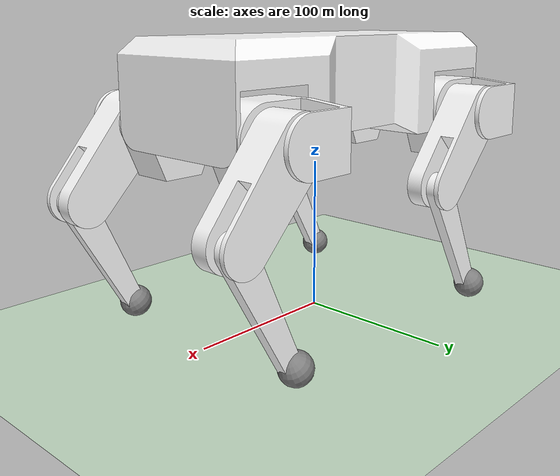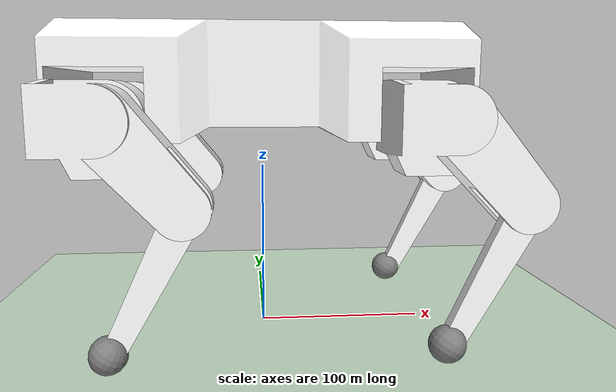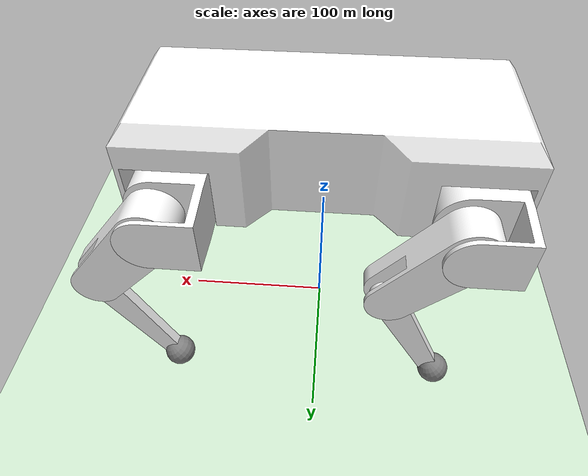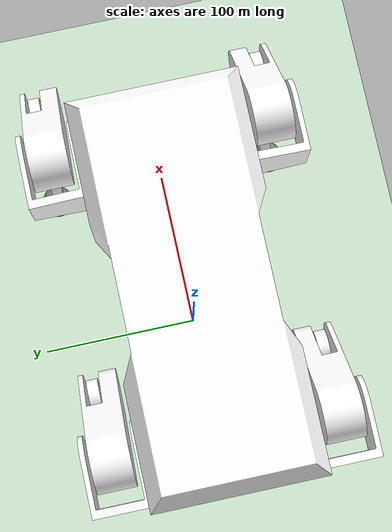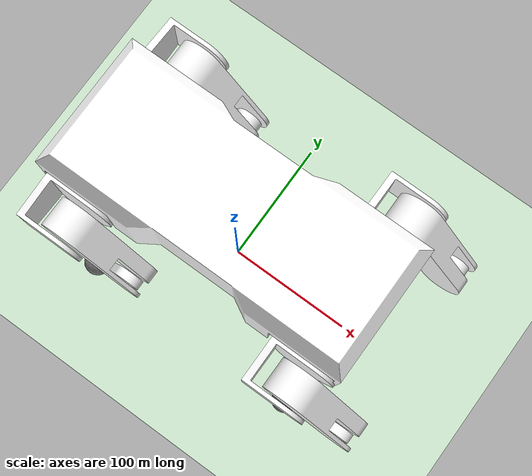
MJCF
<mujoco model="gnoci">
    <option timestep="0.005" gravity="0 0 -9810"/>
    <compiler angle="radian" meshdir="meshes" eulerseq="zyx" autolimits="true"/>

    <default>
        <joint
            limited="true"
            damping="0.01"
            armature="0.01"
            frictionloss="0.01"
        />
        <position
            kp="250000"
            dampratio="0.5"
            forcelimited="true"
            forcerange="-5000000 5000000"
        />
        <motor
            ctrlrange="-1 1"
            gear="1000000"
        />
        <default class="visualgeom">
            <geom
                material="visualgeom"
                condim="1"
                contype="0"
                conaffinity="0"
            />
        </default>

        <default class="body">
            <geom
                material="body"
                condim="1"
                friction=".7"
                solimp=".9 .99 .003"
                solref=".015 1"
            />
        </default>
    </default>

    <asset>
        <mesh name="body-main" content_type="model/stl" file="body-main-quad.stl" />
        <mesh name="hip-left" content_type="model/stl" file="hip-left.stl" />
        <mesh name="hip-right" content_type="model/stl" file="hip-right.stl" />
        <mesh name="thigh-left" content_type="model/stl" file="thigh-left.stl" />
        <mesh name="thigh-right" content_type="model/stl" file="thigh-right.stl" />
        <mesh name="lower-leg-left" content_type="model/stl" file="lower-leg-left.stl" />
        <mesh name="lower-leg-right" content_type="model/stl" file="lower-leg-right.stl"/>
        <texture builtin="checker" height="100" name="texplane" rgb1="0 0 0" rgb2="0.8 0.8 0.8" type="2d" width="100"/>
        <material name="MatPlane" reflectance="0.5" shininess="1" specular="1" texrepeat="60 60" texture="texplane"/>
        <material
            name="visualgeom"
            rgba="1 1 1 1"
        />
        <material
            name="body"
            rgba="0.5 0.9 0.2 0"
        />
    </asset>

    <worldbody>
        <light
            directional="true"
            diffuse="0.4 0.4 0.4"
            specular="0.1 0.1 0.1"
            pos="0 0 15.0"
            dir="0 0 -1"
            castshadow="false"
        />
        <geom condim="3" friction="1 .1 .1" material="MatPlane" name="floor" pos="0 0 0" rgba="0.8 0.9 0.8 1" size="1000 1000 0.125" type="plane"/>
        <camera
            name="track"
            mode="trackcom"
            pos="-250. -250. 375."
            xyaxes="0.7071 -0.7071 0 0.4082 0.4082 0.8165"
        />
        <body name="root" pos="0 0 157" quat="1 0 0 0">
            <freejoint name="root" />
            <site name="imu" size="0.01" pos="0 0 0" />
            <geom name="root" class="visualgeom" type="mesh" mesh="body-main" pos="0 0 0" quat="1 0 0 0"/>
            <geom class="body" type="box" size="115 50 15" pos="0 0 10"/>
            <geom class="body" type="box" size="50 50 17" pos="0 0 -23"/>
            <inertial mass="0.195" diaginertia="1000 1000 1000" pos="0 0 0"/>

            <body name="hip-front-left" pos="-89.5 -25 -30" quat="1 0 0 0">
                <geom class="visualgeom" type="mesh" mesh="hip-left" pos="0 0 0" quat="1 0 0 0"/>
                <geom class="body" type="cylinder" size="22 32" pos="0 -26 0" quat="1 1 0 0"/>
                <inertial mass='0.047' diaginertia="1000 1000 1000" pos="0 0 0"/>
                <joint name="hip-front-left-joint" pos="0 -10 0" axis="1 0 0" range="-0.38 0.42"/>

                <body name="thigh-front-left" pos="7 -30 5" quat="1 0 -0.38 0">
                    <geom class="visualgeom" type="mesh" mesh="thigh-left" pos="0 0 0" quat="1 0 0 0"/>
                    <inertial mass='0.041' diaginertia="1000 1000 1000" pos="0 0 0"/>
                    <joint name="thigh-front-left-joint" pos="0 0 0" axis="0 -1 0" range="-0.65 1"/>

                    <body name="lower-leg-front-left" pos="0 -12 -62" quat="1 0 0.75 0">
                        <geom class="visualgeom" type="mesh" mesh="lower-leg-left" pos="0 0 0" quat="1 0 0 0"/>
                        <geom class="body" type="capsule" size="10" fromto="0 0 0 5 -5 -85" pos="0 0 0" quat="1 0 0 0"/>
                        <inertial mass='0.01' diaginertia="1000 1000 1000" pos="0 0 0"/>
                        <joint name="lower-leg-front-left-joint" pos="0 0 0" axis="0 -1 0" range="-1.15 0.3"/>
                        <site name="foot-front-left" size="10.2" pos="5 -5 -85" />
                    </body>
                </body>
            </body>

            <body name="hip-front-right" pos="-89.5 25 -30" quat="1 0 0 0">
                <geom class="visualgeom" type="mesh" mesh="hip-right" pos="0 0 0" quat="1 0 0 0"/>
                <geom class="body" type="cylinder" size="22 32" pos="0 26 0" quat="1 1 0 0"/>
                <inertial mass='0.047' diaginertia="1000 1000 1000" pos="0 0 0"/>
                <joint name="hip-front-right-joint" pos="0 10 0" axis="1 0 0" range="-0.42 0.38"/>

                <body name="thigh-front-right" pos="7 30 5" quat="1 0 -0.38 0">
                    <geom class="visualgeom" type="mesh" mesh="thigh-right" pos="0 0 0" quat="1 0 0 0"/>
                    <inertial mass='0.041' diaginertia="1000 1000 1000" pos="0 0 0"/>
                    <joint name="thigh-front-right-joint" pos="0 0 0" axis="0 1 0" range="-1 0.65"/>

                    <body name="lower-leg-front-right" pos="0 12 -62" quat="1 0 0.75 0">
                        <geom class="visualgeom" type="mesh" mesh="lower-leg-right" pos="0 0 0" quat="1 0 0 0"/>
                        <geom class="body" type="capsule" size="10" fromto="0 0 0 5 5 -85" pos="0 0 0" quat="1 0 0 0"/>
                        <inertial mass='0.01' diaginertia="1000 1000 1000" pos="0 0 0"/>
                        <joint name="lower-leg-front-right-joint" pos="0 0 0" axis="0 1 0" range="-0.3 1.15"/>
                        <site name="foot-front-right" size="10.2" pos="5 5 -85" />
                    </body>
                </body>
            </body>

            <body name="hip-back-left" pos="89.5 -25 -30" quat="1 0 0 0">
                <geom class="visualgeom" type="mesh" mesh="hip-left" pos="0 0 0" quat="1 0 0 0"/>
                <geom class="body" type="cylinder" size="22 32" pos="0 -26 0" quat="1 1 0 0"/>
                <inertial mass='0.047' diaginertia="1000 1000 1000" pos="0 0 0"/>
                <joint name="hip-back-left-joint" pos="0 -10 0" axis="1 0 0" range="-0.38 0.42"/>

                <body name="thigh-back-left" pos="7 -30 5" quat="1 0 -0.38 0">
                    <geom class="visualgeom" type="mesh" mesh="thigh-left" pos="0 0 0" quat="1 0 0 0"/>
                    <inertial mass='0.041' diaginertia="1000 1000 1000" pos="0 0 0"/>
                    <joint name="thigh-back-left-joint" pos="0 0 0" axis="0 -1 0" range="-0.65 1"/>

                    <body name="lower-leg-back-left" pos="0 -12 -62" quat="1 0 0.75 0">
                        <geom class="visualgeom" type="mesh" mesh="lower-leg-left" pos="0 0 0" quat="1 0 0 0"/>
                        <geom class="body" type="capsule" size="10" fromto="0 0 0 5 -5 -85" pos="0 0 0" quat="1 0 0 0"/>
                        <inertial mass='0.01' diaginertia="1000 1000 1000" pos="0 0 0"/>
                        <joint name="lower-leg-back-left-joint" pos="0 0 0" axis="0 -1 0" range="-1.15 0.3"/>
                        <site name="foot-back-left" size="10.2" pos="5 -5 -85" />
                    </body>
                </body>
            </body>

            <body name="hip-back-right" pos="89.5 25 -30" quat="1 0 0 0">
                <geom class="visualgeom" type="mesh" mesh="hip-right" pos="0 0 0" quat="1 0 0 0"/>
                <geom class="body" type="cylinder" size="22 32" pos="0 26 0" quat="1 1 0 0"/>
                <inertial mass='0.047' diaginertia="1000 1000 1000" pos="0 0 0"/>
                <joint name="hip-back-right-joint" pos="0 10 0" axis="1 0 0" range="-0.42 0.38"/>

                <body name="thigh-back-right" pos="7 30 5" quat="1 0 -0.38 0">
                    <geom class="visualgeom" type="mesh" mesh="thigh-right" pos="0 0 0" quat="1 0 0 0"/>
                    <inertial mass='0.041' diaginertia="1000 1000 1000" pos="0 0 0"/>
                    <joint name="thigh-back-right-joint" pos="0 0 0" axis="0 1 0" range="-1 0.65"/>

                    <body name="lower-leg-back-right" pos="0 12 -62" quat="1 0 0.75 0">
                        <geom class="visualgeom" type="mesh" mesh="lower-leg-right" pos="0 0 0" quat="1 0 0 0"/>
                        <geom class="body" type="capsule" size="10" fromto="0 0 0 5 5 -85" pos="0 0 0" quat="1 0 0 0"/>
                        <inertial mass='0.01' diaginertia="1000 1000 1000" pos="0 0 0"/>
                        <joint name="lower-leg-back-right-joint" pos="0 0 0" axis="0 1 0" range="-0.3 1.15"/>
                        <site name="foot-back-right" size="10.2" pos="5 5 -85" />
                    </body>
                </body>
            </body>
        </body>

    </worldbody>

    <actuator>
        <motor name="servo-hip-front-left" joint="hip-front-left-joint"/>
        <motor name="servo-hip-front-right" joint="hip-front-right-joint"/>
        <motor name="servo-hip-back-left" joint="hip-back-left-joint"/>
        <motor name="servo-hip-back-right" joint="hip-back-right-joint"/>
        <motor name="servo-thigh-front-left" joint="thigh-front-left-joint"/>
        <motor name="servo-thigh-front-right" joint="thigh-front-right-joint"/>
        <motor name="servo-thigh-back-left" joint="thigh-back-left-joint"/>
        <motor name="servo-thigh-back-right" joint="thigh-back-right-joint"/>
        <motor name="servo-lower-leg-front-left" joint="lower-leg-front-left-joint"/>
        <motor name="servo-lower-leg-front-right" joint="lower-leg-front-right-joint"/>
        <motor name="servo-lower-leg-back-left" joint="lower-leg-back-left-joint"/>
        <motor name="servo-lower-leg-back-right" joint="lower-leg-back-right-joint"/>
    </actuator>

    <sensor>
        <actuatorpos name="hip-front-left-servo-pos" actuator="servo-hip-front-left" />
        <actuatorvel name="hip-front-left-servo-vel" actuator="servo-hip-front-left" />
        <actuatorpos name="hip-front-right-servo-pos" actuator="servo-hip-front-right" />
        <actuatorvel name="hip-front-right-servo-vel" actuator="servo-hip-front-right" />
        <actuatorpos name="hip-back-left-servo-pos" actuator="servo-hip-back-left" />
        <actuatorvel name="hip-back-left-servo-vel" actuator="servo-hip-back-left" />
        <actuatorpos name="hip-back-right-servo-pos" actuator="servo-hip-back-right" />
        <actuatorvel name="hip-back-right-servo-vel" actuator="servo-hip-back-right" />
        <actuatorpos name="thigh-front-left-servo-pos" actuator="servo-thigh-front-left" />
        <actuatorvel name="thigh-front-left-servo-vel" actuator="servo-thigh-front-left" />
        <actuatorpos name="thigh-front-right-servo-pos" actuator="servo-thigh-front-right" />
        <actuatorvel name="thigh-front-right-servo-vel" actuator="servo-thigh-front-right" />
        <actuatorpos name="thigh-back-left-servo-pos" actuator="servo-thigh-back-left" />
        <actuatorvel name="thigh-back-left-servo-vel" actuator="servo-thigh-back-left" />
        <actuatorpos name="thigh-back-right-servo-pos" actuator="servo-thigh-back-right" />
        <actuatorvel name="thigh-back-right-servo-vel" actuator="servo-thigh-back-right" />
        <actuatorpos name="lower-leg-front-left-servo-pos" actuator="servo-lower-leg-front-left" />
        <actuatorvel name="lower-leg-front-left-servo-vel" actuator="servo-lower-leg-front-left" />
        <actuatorpos name="lower-leg-front-right-servo-pos" actuator="servo-lower-leg-front-right" />
        <actuatorvel name="lower-leg-front-right-servo-vel" actuator="servo-lower-leg-front-right" />
        <actuatorpos name="lower-leg-back-left-servo-pos" actuator="servo-lower-leg-back-left" />
        <actuatorvel name="lower-leg-back-left-servo-vel" actuator="servo-lower-leg-back-left" />
        <actuatorpos name="lower-leg-back-right-servo-pos" actuator="servo-lower-leg-back-right" />
        <actuatorvel name="lower-leg-back-right-servo-vel" actuator="servo-lower-leg-back-right" />

        <gyro name="gyro" site="imu" noise="0.005" cutoff="34.9" />
        <accelerometer name="accel" site="imu" noise="0.01" cutoff="40"/>

        <touch name="front-left-foot-contact" site="foot-front-left"/>
        <touch name="front-right-foot-contact" site="foot-front-right"/>
        <touch name="back-left-foot-contact" site="foot-back-left"/>
        <touch name="back-right-foot-contact" site="foot-back-right"/>

    </sensor>
</mujoco>
